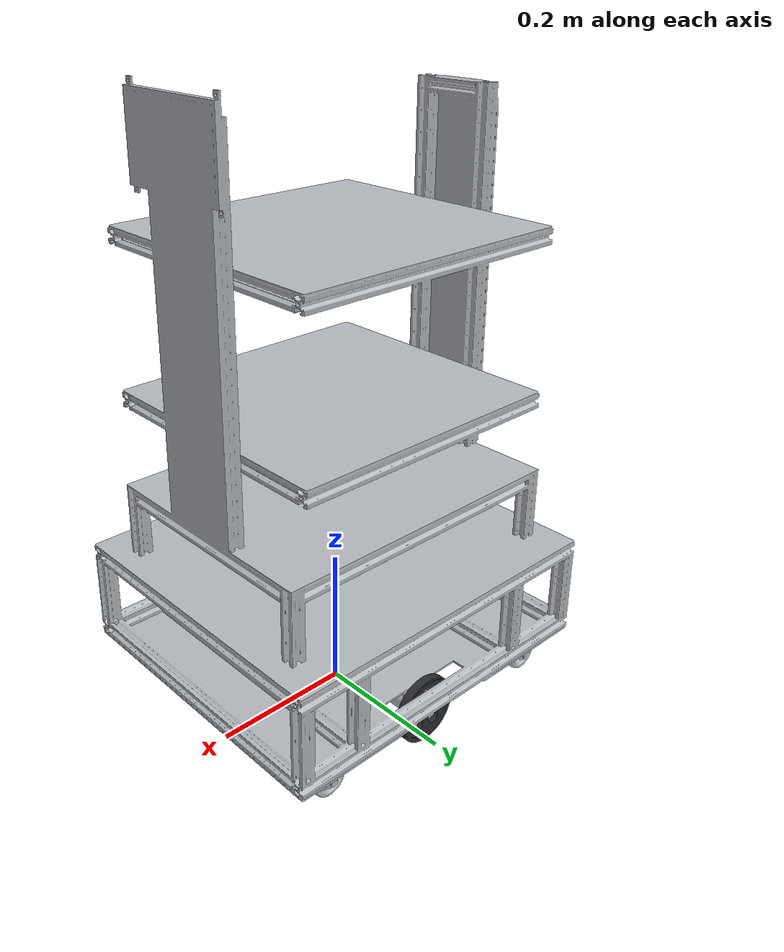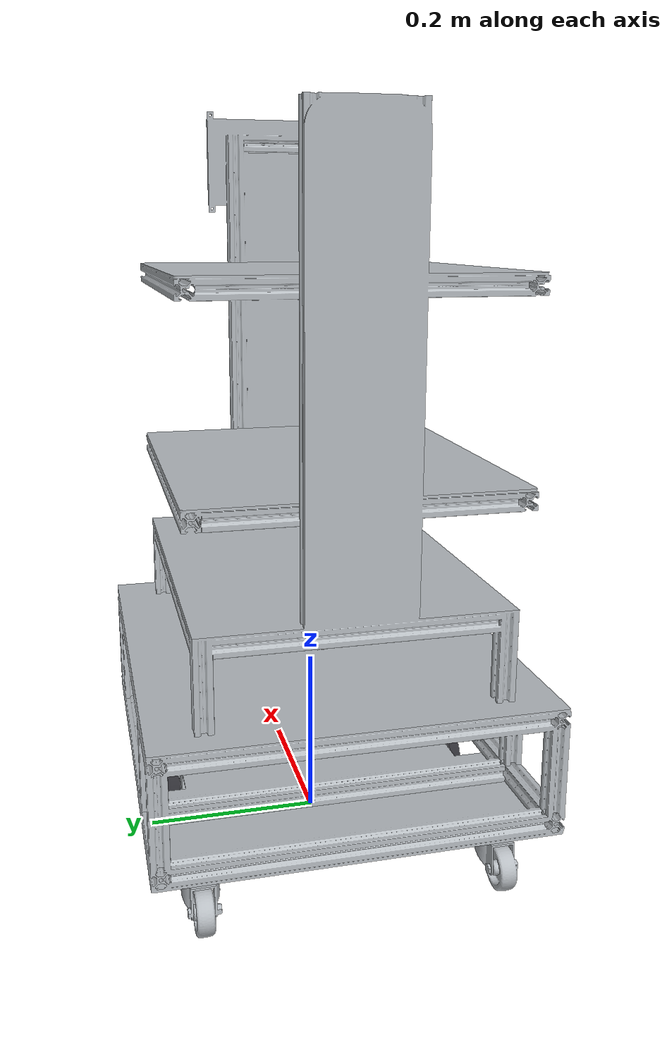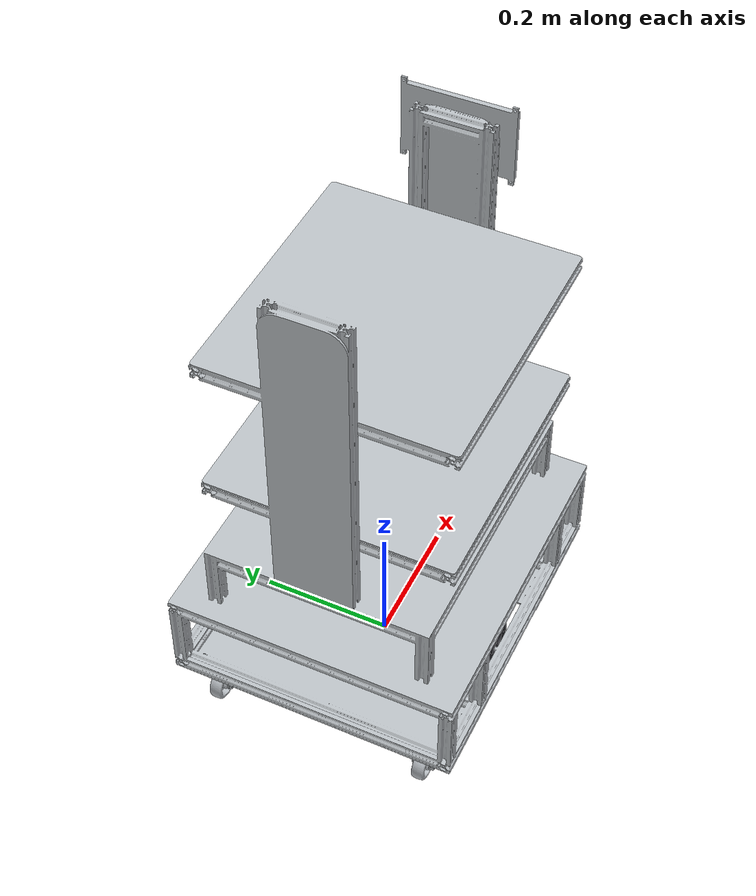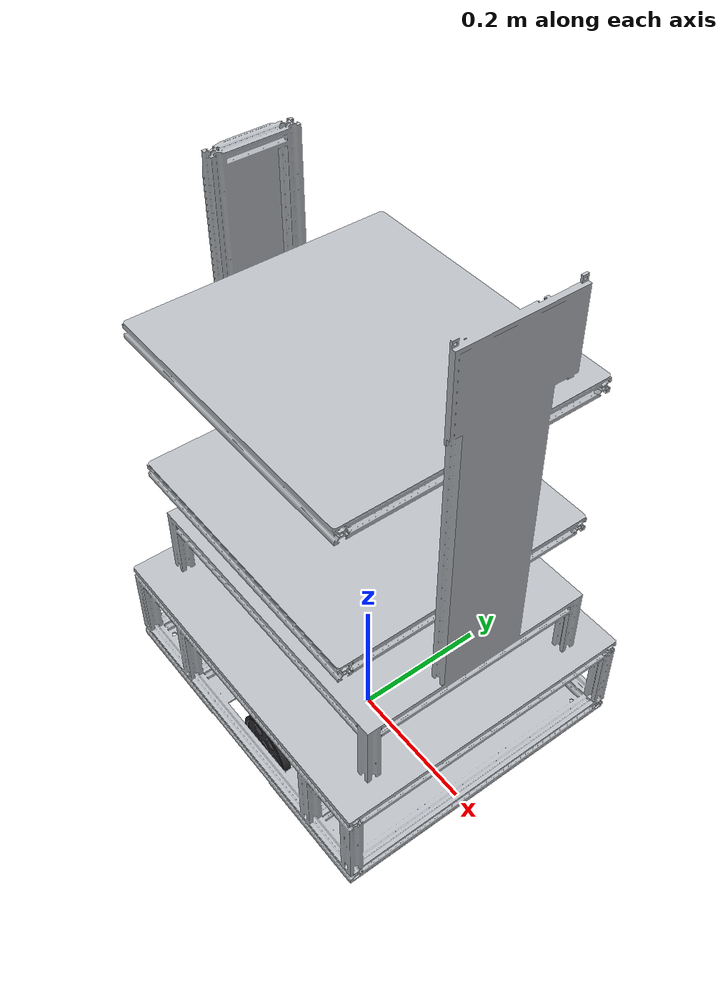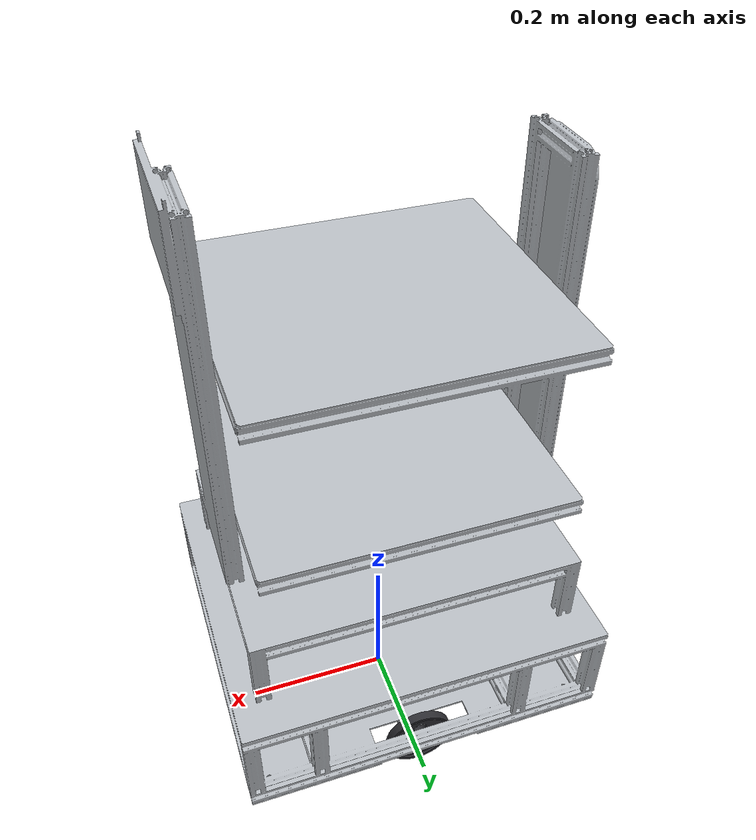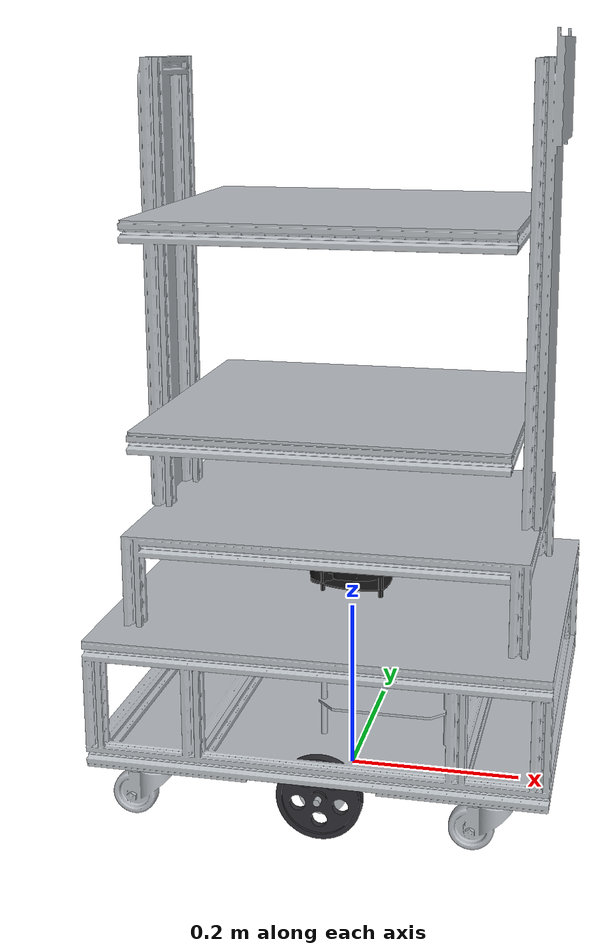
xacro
<?xml version="1.0"?>
<robot xmlns:xacro="http://www.ros.org/wiki/xacro" name="a3">

  <xacro:include filename="$(find a3_description)/urdf/common.xacro"/>
  <xacro:include filename="$(find a3_description)/urdf/drive_wheel.xacro"/>
  <xacro:include filename="$(find a3_description)/urdf/caster_wheel.xacro"/>
  <xacro:include filename="$(find a3_description)/urdf/lidar.xacro"/>

  <!-- Bật thêm thẻ Gazebo + plugin diff_drive:  xacro a3.urdf.xacro sim_gazebo:=true -->
  <xacro:arg name="sim_gazebo" default="false"/>

  <!-- 4 cột nhôm 20x20 đi xuyên khe lidar ở tầng 2 -->
  <xacro:macro name="lidar_bay_post" params="x y">
    <collision>
      <origin xyz="${x} ${y} ${(deck2_top_z + 0.25760)/2}" rpy="0 0 0"/>
      <geometry>
        <box size="0.020 0.020 ${0.25760 - deck2_top_z}"/>
      </geometry>
    </collision>
  </xacro:macro>

  <!-- ===================== base_footprint ===================== -->
  <link name="base_footprint"/>

  <joint name="base_joint" type="fixed">
    <parent link="base_footprint"/>
    <child  link="base_link"/>
    <origin xyz="0 0 ${wheel_radius}" rpy="0 0 0"/>
  </joint>

  <!-- ===================== Khung xe ===================== -->
  <link name="base_link">
    <visual>
      <origin xyz="-0.36703 -0.22233 -0.23303" rpy="${cad_rpy}"/>
      <geometry>
        <mesh filename="package://a3_description/meshes/chassis.STL"
              scale="${mesh_scale}"/>
      </geometry>
      <material name="a3_grey"/>
    </visual>

    <collision name="chassis_lower">
      <origin xyz="0 0 0.07507" rpy="0 0 0"/>
      <geometry>
        <box size="0.5000 0.4400 0.20506"/>
      </geometry>
    </collision>

    <collision name="chassis_upper">
      <origin xyz="0.00400 -0.00973 0.53400" rpy="0 0 0"/>
      <geometry>
        <box size="0.45400 0.37047 0.55281"/>
      </geometry>
    </collision>

    <xacro:lidar_bay_post x=" 0.2100" y=" 0.1600"/>
    <xacro:lidar_bay_post x=" 0.2100" y="-0.1600"/>
    <xacro:lidar_bay_post x="-0.2100" y=" 0.1600"/>
    <xacro:lidar_bay_post x="-0.2100" y="-0.1600"/>

    <inertial>
      <origin xyz="0.008394 -0.002306 0.286865" rpy="0 0 0"/>
      <mass value="${chassis_mass}"/>
      <inertia ixx="${chassis_mass*0.0654962}" ixy="${chassis_mass*-2.8533e-5}" ixz="${chassis_mass*-2.01131e-3}"
               iyy="${chassis_mass*0.0754722}" iyz="${chassis_mass*5.33955e-4}"
               izz="${chassis_mass*0.0396761}"/>
    </inertial>
  </link>

  <!-- ===================== 2 bánh chủ động ===================== -->
  <xacro:drive_wheel prefix="left"  reflect="1"/>
  <xacro:drive_wheel prefix="right" reflect="-1"/>

  <!-- ===================== 4 bánh caster =====================
       Cùng 1 macro, cùng 1 file mesh, 4 vị trí khác nhau. -->
  <xacro:caster_wheel prefix="front_left"  x="${ caster_x}" y="${ caster_y}"/>
  <xacro:caster_wheel prefix="front_right" x="${ caster_x}" y="${-caster_y}"/>
  <xacro:caster_wheel prefix="rear_left"   x="${-caster_x}" y="${ caster_y}"/>
  <xacro:caster_wheel prefix="rear_right"  x="${-caster_x}" y="${-caster_y}"/>

  <!-- ===================== Lidar ===================== -->
  <xacro:rp_lidar parent="base_link"/>

  <!-- ===================== Gazebo (tuỳ chọn) ===================== -->
  <xacro:if value="$(arg sim_gazebo)">
    <xacro:include filename="$(find a3_description)/urdf/a3.gazebo.xacro"/>
  </xacro:if>

</robot>

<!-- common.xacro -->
<robot xmlns:xacro="http://www.ros.org/wiki/xacro">

  <!-- STL xuất từ CAD theo mm nên phải scale 0.001 -->
  <xacro:property name="mesh_scale" value="0.001 0.001 0.001"/>

  <xacro:property name="cad_rpy" value="1.5707963268 0 1.5707963268"/>
  <!-- Riêng caster & bánh xe được xuất rời tại gốc toạ độ, chỉ cần xoay Y-up -> Z-up -->
  <xacro:property name="yup_rpy" value="1.5707963268 0 0"/>

  <!-- ========== Bánh chủ động (drive_wheel.STL: phi 95 x 19.2) ========== -->
  <xacro:property name="wheel_radius"     value="0.0475"/>
  <xacro:property name="wheel_width"      value="0.01920"/>
  <!-- Tâm lỗ trục đo được trong chassis.STL: mặt bích trái x=57.33, phải x=387.33,
       tâm khung x=222.33  =>  khoảng cách 2 bánh = 0.3492 m -->
  <xacro:property name="wheel_separation" value="0.34920"/>
  <xacro:property name="wheel_mass"       value="0.30"/>

  <!-- ========== Bánh caster (caster_wheel.STL) ==========
       Đế bắt bulông 60x60 mm; từ mặt đế xuống điểm tiếp đất = 68.99 mm.
       Bánh phi 47.2 mm, lệch 25 mm sau trục xoay (trail). -->
  <xacro:property name="caster_plate_to_ground" value="0.0689916"/>
  <xacro:property name="caster_wheel_radius"    value="0.02359"/>
  <xacro:property name="caster_trail"           value="0.02500"/>
  <xacro:property name="caster_mass"            value="0.40"/>
  <!-- Vị trí 4 trục xoay caster trên mặt đáy khung (chỉnh theo lỗ bắt thực tế) -->
  <xacro:property name="caster_x" value="0.190"/>
  <xacro:property name="caster_y" value="0.165"/>

  <!-- ========== Khung (chassis.STL) ==========
       Bao: 0.500 (dài, X) x 0.440 (rộng, Y) x 0.838 (cao, Z)
       Đáy khung cách đất 0.0200 m -->
  <xacro:property name="chassis_mass" value="18.0"/>

  <!-- ========== Lidar (RP-Lidar.STL) ========== -->
  <xacro:property name="lidar_mass" value="0.19"/>
  <xacro:property name="deck2_top_z"   value="0.17760"/>
  <xacro:property name="lidar_axis_up" value="0.043308"/>
  <xacro:property name="lidar_x" value="0.0"/>
  <xacro:property name="lidar_y" value="0.0"/>
  <xacro:property name="lidar_z" value="${deck2_top_z + lidar_axis_up}"/>
  <xacro:property name="lidar_yaw" value="1.5707963268"/>

  <!-- ================= Vật liệu hiển thị trong RViz ================= -->
  <material name="a3_grey">   <color rgba="0.72 0.74 0.76 1.0"/></material>
  <material name="a3_dark">   <color rgba="0.18 0.18 0.20 1.0"/></material>
  <material name="a3_black">  <color rgba="0.08 0.08 0.08 1.0"/></material>
  <material name="a3_orange"> <color rgba="0.90 0.45 0.10 1.0"/></material>

</robot>

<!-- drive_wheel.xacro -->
<robot xmlns:xacro="http://www.ros.org/wiki/xacro">

  <!-- Bánh chủ động. Dùng CHUNG một file mesh cho cả 2 bên
       (left_wheel.STL và right_wheel.STL gốc trùng nhau từng byte),
       chỉ khác dấu `reflect` để lật mặt bánh ra ngoài. -->
  <xacro:macro name="drive_wheel" params="prefix reflect">

    <link name="${prefix}_wheel_link">
      <visual>
        <origin xyz="-0.0475 ${reflect*0.0096} ${-reflect*0.0475}"
                rpy="${reflect*1.5707963268} 0 0"/>
        <geometry>
          <mesh filename="package://a3_description/meshes/drive_wheel.STL"
                scale="${mesh_scale}"/>
        </geometry>
        <material name="a3_dark"/>
      </visual>

      <collision>
        <origin xyz="0 0 0" rpy="1.5707963268 0 0"/>
        <geometry>
          <cylinder radius="${wheel_radius}" length="${wheel_width}"/>
        </geometry>
      </collision>

      <!-- Quán tính tính từ chính mesh (mật độ đều), quy về khối lượng wheel_mass -->
      <inertial>
        <origin xyz="0 ${reflect*0.00225} 0" rpy="0 0 0"/>
        <mass value="${wheel_mass}"/>
        <inertia ixx="${wheel_mass*6.6417e-4}" ixy="0.0" ixz="0.0"
                 iyy="${wheel_mass*1.30590e-3}" iyz="0.0"
                 izz="${wheel_mass*6.6418e-4}"/>
      </inertial>
    </link>

    <joint name="${prefix}_wheel_joint" type="continuous">
      <parent link="base_link"/>
      <child  link="${prefix}_wheel_link"/>
      <origin xyz="0 ${reflect*wheel_separation/2} 0" rpy="0 0 0"/>
      <axis xyz="0 1 0"/>
      <dynamics damping="0.02" friction="0.01"/>
    </joint>

  </xacro:macro>
</robot>

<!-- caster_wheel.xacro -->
<robot xmlns:xacro="http://www.ros.org/wiki/xacro">

  <xacro:macro name="caster_wheel" params="prefix x y">

    <link name="${prefix}_caster_link">
      <visual>
        <origin xyz="-0.0502105 0.030005 -0.0868542" rpy="${yup_rpy}"/>
        <geometry>
          <mesh filename="package://a3_description/meshes/caster_wheel.STL"
                scale="${mesh_scale}"/>
        </geometry>
        <material name="a3_grey"/>
      </visual>

      <!-- Va chạm: quả cầu đúng bằng bánh caster, tâm lệch `caster_trail` phía sau
           trục xoay. Cho ma sát ~0 trong Gazebo để nó trượt tự do mọi hướng. -->
      <collision>
        <origin xyz="${-caster_trail} 0 ${-(caster_plate_to_ground-caster_wheel_radius)}"
                rpy="0 0 0"/>
        <geometry>
          <sphere radius="${caster_wheel_radius}"/>
        </geometry>
      </collision>

      <inertial>
        <origin xyz="-0.013106 -0.000058 -0.025901" rpy="0 0 0"/>
        <mass value="${caster_mass}"/>
        <inertia ixx="${caster_mass*5.65912e-4}" ixy="${caster_mass*-6.72554e-7}" ixz="${caster_mass*-2.21726e-4}"
                 iyy="${caster_mass*7.67405e-4}" iyz="${caster_mass*-1.04502e-6}"
                 izz="${caster_mass*4.57431e-4}"/>
      </inertial>
    </link>

    <joint name="${prefix}_caster_joint" type="fixed">
      <parent link="base_link"/>
      <child  link="${prefix}_caster_link"/>
      <origin xyz="${x} ${y} ${caster_plate_to_ground - wheel_radius}" rpy="0 0 0"/>
    </joint>

  </xacro:macro>
</robot>

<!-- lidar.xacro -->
<robot xmlns:xacro="http://www.ros.org/wiki/xacro">

  <xacro:macro name="rp_lidar" params="parent">

    <link name="laser_link">
      <visual>
        <origin xyz="-0.13303 -0.04813 -0.76300" rpy="${cad_rpy}"/>
        <geometry>
          <mesh filename="package://a3_description/meshes/RP-Lidar.STL"
                scale="${mesh_scale}"/>
        </geometry>
        <material name="a3_black"/>
      </visual>

      <collision>
        <origin xyz="-0.00011 0.00269 -0.01656" rpy="0 0 0"/>
        <geometry>
          <box size="0.0717 0.0975 0.0535"/>
        </geometry>
      </collision>

      <inertial>
        <origin xyz="0.000421 0.001899 -0.018576" rpy="0 0 0"/>
        <mass value="${lidar_mass}"/>
        <inertia ixx="${lidar_mass*8.41657e-4}" ixy="${lidar_mass*8.18813e-6}" ixz="${lidar_mass*-5.22246e-6}"
                 iyy="${lidar_mass*4.33486e-4}" iyz="${lidar_mass*8.94180e-5}"
                 izz="${lidar_mass*9.84789e-4}"/>
      </inertial>
    </link>

    <joint name="laser_joint" type="fixed">
      <parent link="${parent}"/>
      <child  link="laser_link"/>
      <origin xyz="${lidar_x} ${lidar_y} ${lidar_z}" rpy="0 0 ${lidar_yaw}"/>
    </joint>

  </xacro:macro>
</robot>
